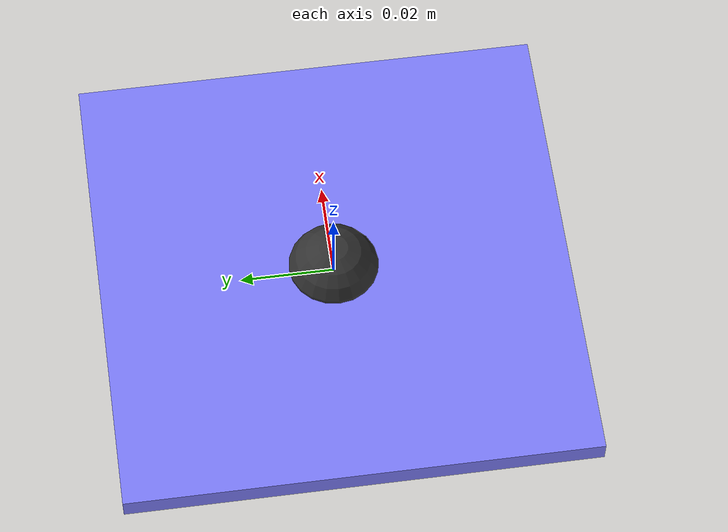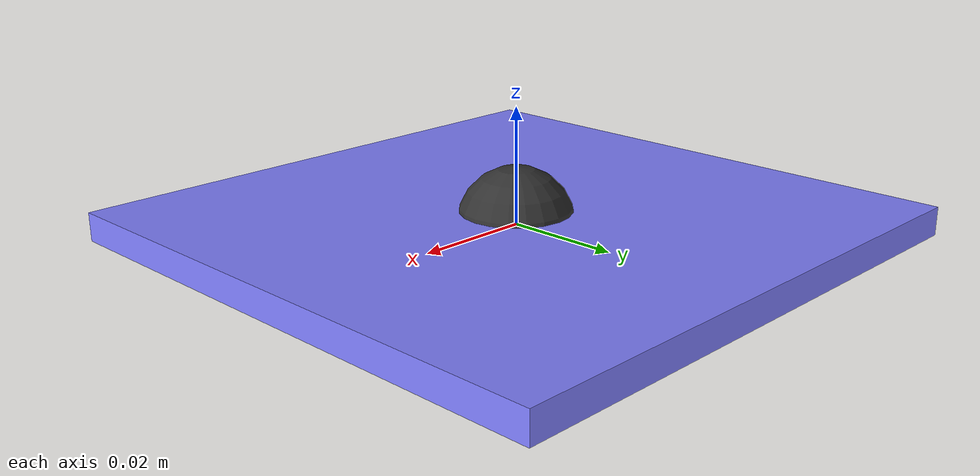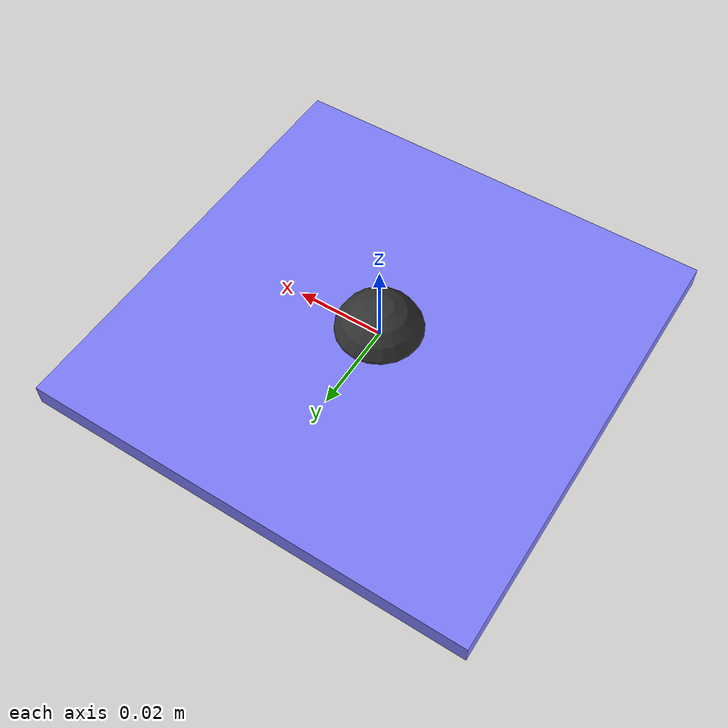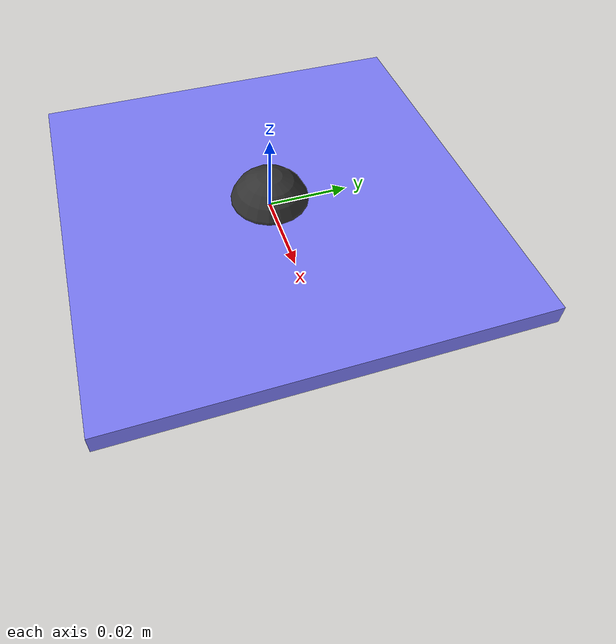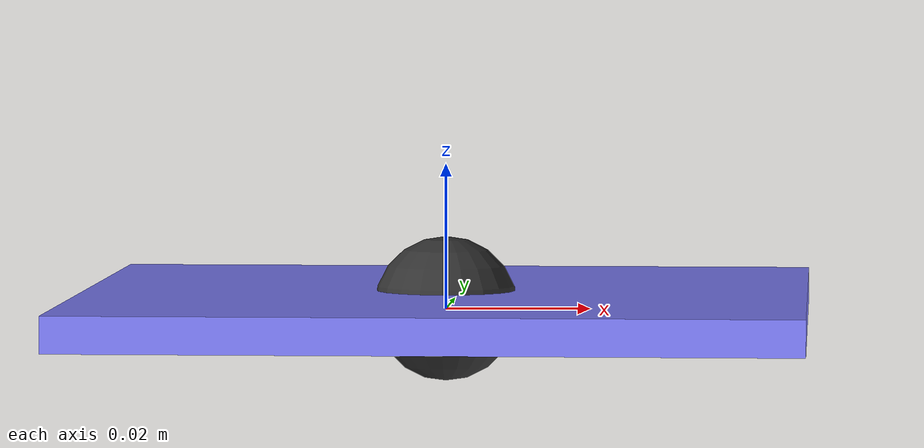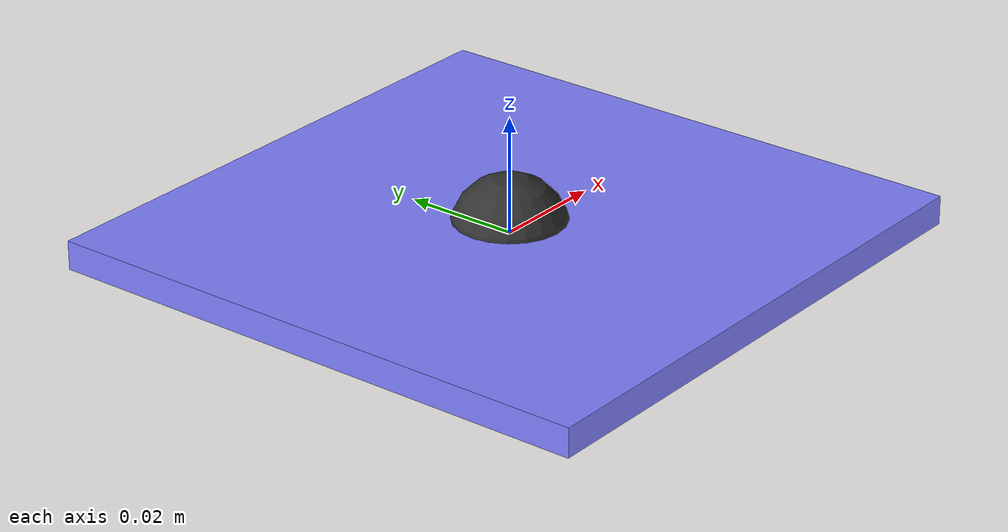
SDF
<?xml version="1.0" ?>
<sdf version="1.8">
    <model name="aether">
        <link name="base_link"/>

        <link name="chassis_link">
            <pose>0 0 0 0 0 0</pose>
            <inertial>
                <mass>0.05</mass>
                <inertia>
                    <ixx>0.01</ixx>
                    <ixy>0</ixy>
                    <ixz>0</ixz>
                    <iyy>0.01</iyy>
                    <iyz>0</iyz>
                    <izz>0.01</izz>
                </inertia>
            </inertial>
            <visual name="chassis_visual">
                <geometry>
                    <box>
                        <size>0.1 0.1 0.005</size>
                    </box>
                </geometry>
                <material>
                    <ambient>0.5 0.5 1.0 1</ambient>
                    <diffuse>0.5 0.5 1.0 1</diffuse>
                    <specular>0.0 0.0 1.0 1</specular>
                </material>
            </visual>
            <collision name="chassis_collision">
                <geometry>
                    <box>
                        <size>0.1 0.1 0.005</size>
                    </box>
                </geometry>
            </collision>
        </link>

        <link name="left_wheel">
            <pose>0 0 0 0 0 0</pose>
            <inertial>
                <mass>0.05</mass>
                <inertia>
                    <ixx>0.01</ixx>
                    <ixy>0</ixy>
                    <ixz>0</ixz>
                    <iyy>0.01</iyy>
                    <iyz>0</iyz>
                    <izz>0.01</izz>
                </inertia>
            </inertial>
            <visual name="left_wheel_visual">
                <geometry>
                    <sphere>
                        <radius>0.01</radius>
                    </sphere>
                </geometry>
                <material>
                    <ambient>0.2 0.2 0.2 1</ambient>
                    <diffuse>0.2 0.2 0.2 1</diffuse>
                    <specular>0.2 0.2 0.2 1</specular>
                </material>
            </visual>
            <collision name="left_wheel_collision">
                <geometry>
                    <sphere>
                        <radius>0.01</radius>
                    </sphere>
                </geometry>
            </collision>
        </link>

        <link name="right_wheel">
            <pose>0 0 0 0 0 0</pose>
            <inertial>
                <mass>0.05</mass>
                <inertia>
                    <ixx>0.01</ixx>
                    <ixy>0</ixy>
                    <ixz>0</ixz>
                    <iyy>0.01</iyy>
                    <iyz>0</iyz>
                    <izz>0.01</izz>
                </inertia>
            </inertial>
            <visual name="right_wheel_visual">
                <geometry>
                    <sphere>
                        <radius>0.01</radius>
                    </sphere>
                </geometry>
                <material>
                    <ambient>0.2 0.2 0.2 1</ambient>
                    <diffuse>0.2 0.2 0.2 1</diffuse>
                    <specular>0.2 0.2 0.2 1</specular>
                </material>
            </visual>
            <collision name="right_wheel_collision">
                <geometry>
                    <sphere>
                        <radius>0.01</radius>
                    </sphere>
                </geometry>
            </collision>
        </link>

        <link name="lidar_link">
            <pose>0 0 0 0 0 0</pose>
            <inertial>
                <mass>0.01</mass>
                <inertia>
                    <ixx>0.000166667</ixx>
                    <iyy>0.000166667</iyy>
                    <izz>0.000166667</izz>
                </inertia>
            </inertial>
            <collision name="lidar_collision">
                <geometry>
                    <box>
                        <size>0.01 0.01 0.01</size>
                    </box>
                </geometry>
            </collision>
            <visual name="lidar_visual">
                <geometry>
                    <box>
                        <size>0.01 0.01 0.01</size>
                    </box>
                </geometry>
            </visual>
            <sensor name="gpu_lidar" type="gpu_lidar">
                <pose>0 0 0 0 0 0</pose>
                <topic>scan</topic>
                <gz_frame_id>aether/lidar_link</gz_frame_id>
                <update_rate>10</update_rate>
                <lidar>
                    <scan>
                        <horizontal>
                            <samples>640</samples>
                            <resolution>1</resolution>
                            <min_angle>-1.396263</min_angle>
                            <max_angle>1.396263</max_angle>
                        </horizontal>
                        <vertical>
                            <samples>1</samples>
                            <resolution>1</resolution>
                            <min_angle>0.0</min_angle>
                            <max_angle>0.0</max_angle>
                        </vertical>
                    </scan>
                    <range>
                        <min>0.08</min>
                        <max>10.0</max>
                        <resolution>0.01</resolution>
                    </range>
                </lidar>
                <visualize>true</visualize>
            </sensor>
        </link>

        <joint name="chassis_joint" type="fixed">
            <parent>base_link</parent>
            <child>chassis_link</child>
            <pose>0.05 0 0.025 0 0 0</pose>
        </joint>

        <joint name="lidar_joint" type="fixed">
            <parent>chassis_link</parent>
            <child>lidar_link</child>
            <pose>0 0 0.05 0 0 0</pose>
        </joint>

        <joint name="left_wheel_joint" type="revolute">
            <parent>chassis_link</parent>
            <child>left_wheel</child>
            <pose>0 -0.75 0 0 0 0</pose>
            <axis>
                <xyz>0 0 1</xyz>
                <limit>
                    <lower>-1.79769e+308</lower>
                    <upper>1.79769e+308</upper>
                </limit>
            </axis>
        </joint>

        <joint name="right_wheel_joint" type="revolute">
            <parent>chassis_link</parent>
            <child>right_wheel</child>
            <pose>0 0.75 0 0 0 0</pose>
            <axis>
                <xyz>0 0 1</xyz>
                <limit>
                    <lower>-1.79769e+308</lower>
                    <upper>1.79769e+308</upper>
                </limit>
            </axis>
        </joint>

        <plugin
        filename="ignition-gazebo-diff-drive-system"
        name="ignition::gazebo::systems::DiffDrive">
            <left_joint>left_wheel_joint</left_joint>
            <right_joint>right_wheel_joint</right_joint>
            <wheel_separation>0.1</wheel_separation>
            <wheel_radius>0.01</wheel_radius>
            <odom_publish_frequency>5</odom_publish_frequency>
            <max_linear_acceleration>5</max_linear_acceleration>
            <min_linear_acceleration>-5</min_linear_acceleration>
            <max_angular_acceleration>5</max_angular_acceleration>
            <min_angular_acceleration>-5</min_angular_acceleration>
            <max_linear_velocity>3.5</max_linear_velocity>
            <min_linear_velocity>-3.5</min_linear_velocity>
            <max_angular_velocity>5</max_angular_velocity>
            <min_angular_velocity>-5</min_angular_velocity>
        </plugin>
    </model>
</sdf>
